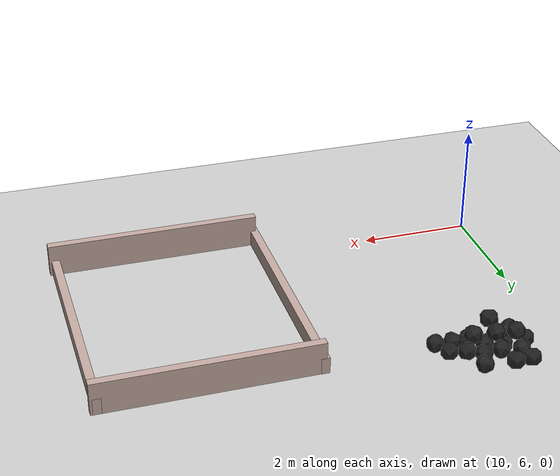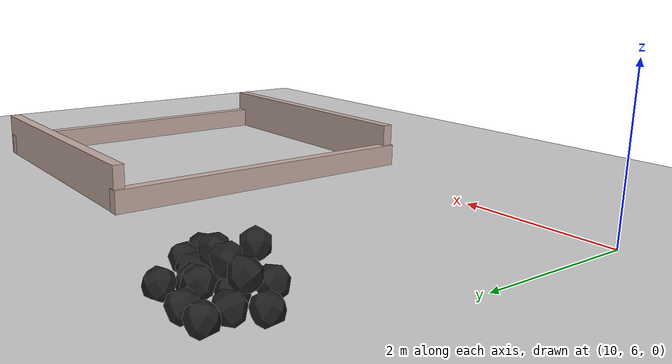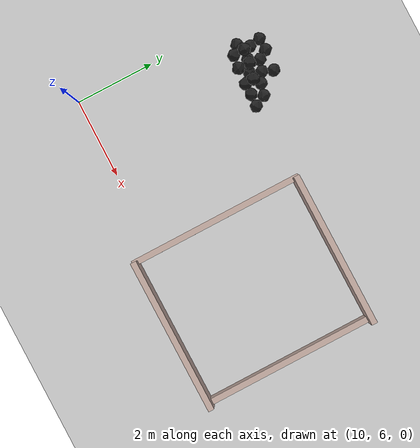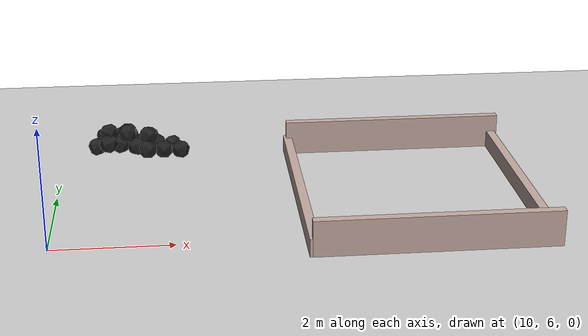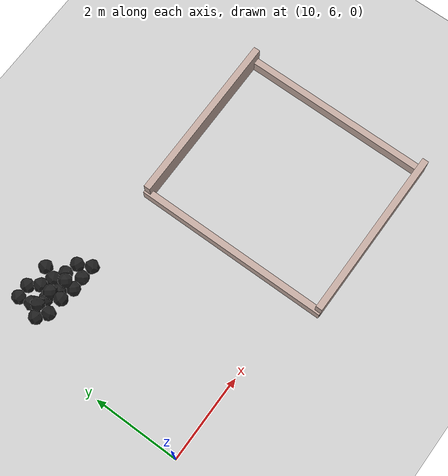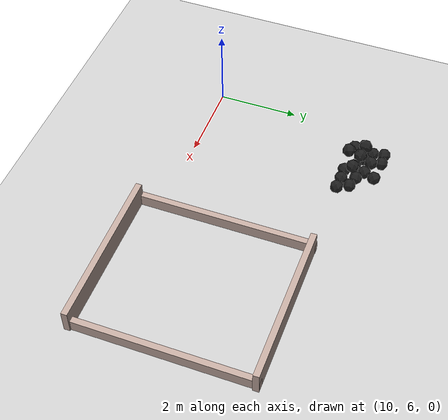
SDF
<sdf version="1.7">
 <world name="default">
  <model name="ground_plane">
   <static>1</static>
   <link name="link">
    <collision name="collision">
     <geometry><plane><normal>0 0 1</normal><size>100 100</size></plane></geometry>
     <surface><friction><ode><mu>100</mu><mu2>50</mu2></ode></friction></surface>
    </collision>
    <visual name="visual">
     <cast_shadows>0</cast_shadows>
     <geometry><plane><normal>0 0 1</normal><size>100 100</size></plane></geometry>
     <material>
      <script><uri>file://media/materials/scripts/gazebo.material</uri><name>Gazebo/Grey</name></script>
     </material>
    </visual>
   </link>
  </model>
  <model name="haoduomiantiaa_17">
   <link name="link_0">
    <inertial>
     <mass>0.2</mass>
     <inertia>
      <ixx>0.166667</ixx>
      <ixy>0</ixy>
      <ixz>0</ixz>
      <iyy>0.166667</iyy>
      <iyz>0</iyz>
      <izz>0.166667</izz>
     </inertia>
    </inertial>
    <visual name="visual">
     <geometry>
      <mesh>
       <uri>/home/lihaoyang/catkin_ws/src/pudong_gazebo/world/stl/haoduomianti.stl</uri>
       <scale>1 1 1</scale>
      </mesh>
     </geometry>
     <material>
      <lighting>1</lighting>
      <script><uri>file://media/materials/scripts/gazebo.material</uri><name>Gazebo/Black</name></script>
      <shader type="pixel"><normal_map>__default__</normal_map></shader>
      <ambient>0.3 0.3 0.3 1</ambient>
      <diffuse>0.7 0.7 0.7 1</diffuse>
      <specular>0.01 0.01 0.01 1</specular>
      <emissive>0 0 0 1</emissive>
     </material>
    </visual>
    <collision name="collision">
     <geometry>
      <mesh>
       <uri>/home/lihaoyang/catkin_ws/src/pudong_gazebo/world/stl/haoduomianti.stl</uri>
       <scale>1 1 1</scale>
      </mesh>
     </geometry>
     <surface>
      <friction>
       <ode><mu>1</mu><mu2>1</mu2><fdir1>0 0 0</fdir1><slip1>0</slip1><slip2>0</slip2></ode>
       <torsional>
        <coefficient>1</coefficient>
        <patch_radius>0</patch_radius>
        <surface_radius>0</surface_radius>
        <use_patch_radius>1</use_patch_radius>
        <ode><slip>0</slip></ode>
       </torsional>
      </friction>
      <bounce><restitution_coefficient>0</restitution_coefficient><threshold>1e+06</threshold></bounce>
      <contact>
       <collide_without_contact>0</collide_without_contact>
       <collide_without_contact_bitmask>1</collide_without_contact_bitmask>
       <collide_bitmask>1</collide_bitmask>
       <ode>
        <soft_cfm>0</soft_cfm>
        <soft_erp>0.2</soft_erp>
        <kp>1e+13</kp>
        <kd>1</kd>
        <max_vel>0.01</max_vel>
        <min_depth>0</min_depth>
       </ode>
       <bullet>
        <split_impulse>1</split_impulse>
        <split_impulse_penetration_threshold>-0.01</split_impulse_penetration_threshold>
        <soft_cfm>0</soft_cfm>
        <soft_erp>0.2</soft_erp>
        <kp>1e+13</kp>
        <kd>1</kd>
       </bullet>
      </contact>
     </surface>
    </collision>
   </link>
   <static>0</static>
   <pose>10.8183 10.1767 0.13424 0.983569 -0.827612 0.698595</pose>
  </model>
  <model name="haoduomiantiaa_18">
   <link name="link_0">
    <inertial>
     <mass>0.2</mass>
     <inertia>
      <ixx>0.166667</ixx>
      <ixy>0</ixy>
      <ixz>0</ixz>
      <iyy>0.166667</iyy>
      <iyz>0</iyz>
      <izz>0.166667</izz>
     </inertia>
    </inertial>
    <visual name="visual">
     <geometry>
      <mesh>
       <uri>/home/lihaoyang/catkin_ws/src/pudong_gazebo/world/stl/haoduomianti.stl</uri>
       <scale>1 1 1</scale>
      </mesh>
     </geometry>
     <material>
      <lighting>1</lighting>
      <script><uri>file://media/materials/scripts/gazebo.material</uri><name>Gazebo/Black</name></script>
      <shader type="pixel"><normal_map>__default__</normal_map></shader>
      <ambient>0.3 0.3 0.3 1</ambient>
      <diffuse>0.7 0.7 0.7 1</diffuse>
      <specular>0.01 0.01 0.01 1</specular>
      <emissive>0 0 0 1</emissive>
     </material>
    </visual>
    <collision name="collision">
     <geometry>
      <mesh>
       <uri>/home/lihaoyang/catkin_ws/src/pudong_gazebo/world/stl/haoduomianti.stl</uri>
       <scale>1 1 1</scale>
      </mesh>
     </geometry>
     <surface>
      <friction>
       <ode><mu>1</mu><mu2>1</mu2><fdir1>0 0 0</fdir1><slip1>0</slip1><slip2>0</slip2></ode>
       <torsional>
        <coefficient>1</coefficient>
        <patch_radius>0</patch_radius>
        <surface_radius>0</surface_radius>
        <use_patch_radius>1</use_patch_radius>
        <ode><slip>0</slip></ode>
       </torsional>
      </friction>
      <bounce><restitution_coefficient>0</restitution_coefficient><threshold>1e+06</threshold></bounce>
      <contact>
       <collide_without_contact>0</collide_without_contact>
       <collide_without_contact_bitmask>1</collide_without_contact_bitmask>
       <collide_bitmask>1</collide_bitmask>
       <ode>
        <soft_cfm>0</soft_cfm>
        <soft_erp>0.2</soft_erp>
        <kp>1e+13</kp>
        <kd>1</kd>
        <max_vel>0.01</max_vel>
        <min_depth>0</min_depth>
       </ode>
       <bullet>
        <split_impulse>1</split_impulse>
        <split_impulse_penetration_threshold>-0.01</split_impulse_penetration_threshold>
        <soft_cfm>0</soft_cfm>
        <soft_erp>0.2</soft_erp>
        <kp>1e+13</kp>
        <kd>1</kd>
       </bullet>
      </contact>
     </surface>
    </collision>
   </link>
   <static>0</static>
   <pose>11.1813 9.75908 0.221474 0.668145 -0.565996 1.57935</pose>
  </model>
  <model name="haoduomiantiaa_20">
   <link name="link_0">
    <inertial>
     <mass>0.2</mass>
     <inertia>
      <ixx>0.166667</ixx>
      <ixy>0</ixy>
      <ixz>0</ixz>
      <iyy>0.166667</iyy>
      <iyz>0</iyz>
      <izz>0.166667</izz>
     </inertia>
    </inertial>
    <visual name="visual">
     <geometry>
      <mesh>
       <uri>/home/lihaoyang/catkin_ws/src/pudong_gazebo/world/stl/haoduomianti.stl</uri>
       <scale>1 1 1</scale>
      </mesh>
     </geometry>
     <material>
      <lighting>1</lighting>
      <script><uri>file://media/materials/scripts/gazebo.material</uri><name>Gazebo/Black</name></script>
      <shader type="pixel"><normal_map>__default__</normal_map></shader>
      <ambient>0.3 0.3 0.3 1</ambient>
      <diffuse>0.7 0.7 0.7 1</diffuse>
      <specular>0.01 0.01 0.01 1</specular>
      <emissive>0 0 0 1</emissive>
     </material>
    </visual>
    <collision name="collision">
     <geometry>
      <mesh>
       <uri>/home/lihaoyang/catkin_ws/src/pudong_gazebo/world/stl/haoduomianti.stl</uri>
       <scale>1 1 1</scale>
      </mesh>
     </geometry>
     <surface>
      <friction>
       <ode><mu>1</mu><mu2>1</mu2><fdir1>0 0 0</fdir1><slip1>0</slip1><slip2>0</slip2></ode>
       <torsional>
        <coefficient>1</coefficient>
        <patch_radius>0</patch_radius>
        <surface_radius>0</surface_radius>
        <use_patch_radius>1</use_patch_radius>
        <ode><slip>0</slip></ode>
       </torsional>
      </friction>
      <bounce><restitution_coefficient>0</restitution_coefficient><threshold>1e+06</threshold></bounce>
      <contact>
       <collide_without_contact>0</collide_without_contact>
       <collide_without_contact_bitmask>1</collide_without_contact_bitmask>
       <collide_bitmask>1</collide_bitmask>
       <ode>
        <soft_cfm>0</soft_cfm>
        <soft_erp>0.2</soft_erp>
        <kp>1e+13</kp>
        <kd>1</kd>
        <max_vel>0.01</max_vel>
        <min_depth>0</min_depth>
       </ode>
       <bullet>
        <split_impulse>1</split_impulse>
        <split_impulse_penetration_threshold>-0.01</split_impulse_penetration_threshold>
        <soft_cfm>0</soft_cfm>
        <soft_erp>0.2</soft_erp>
        <kp>1e+13</kp>
        <kd>1</kd>
       </bullet>
      </contact>
     </surface>
    </collision>
   </link>
   <static>0</static>
   <pose>11.4947 9.96528 0.098501 0.636167 -0.637468 -1.3032</pose>
  </model>
  <model name="haoduomiantiaa_39">
   <link name="link_0">
    <inertial>
     <mass>0.2</mass>
     <inertia>
      <ixx>0.166667</ixx>
      <ixy>0</ixy>
      <ixz>0</ixz>
      <iyy>0.166667</iyy>
      <iyz>0</iyz>
      <izz>0.166667</izz>
     </inertia>
    </inertial>
    <visual name="visual">
     <geometry>
      <mesh>
       <uri>/home/lihaoyang/catkin_ws/src/pudong_gazebo/world/stl/haoduomianti.stl</uri>
       <scale>1 1 1</scale>
      </mesh>
     </geometry>
     <material>
      <lighting>1</lighting>
      <script><uri>file://media/materials/scripts/gazebo.material</uri><name>Gazebo/Black</name></script>
      <shader type="pixel"><normal_map>__default__</normal_map></shader>
      <ambient>0.3 0.3 0.3 1</ambient>
      <diffuse>0.7 0.7 0.7 1</diffuse>
      <specular>0.01 0.01 0.01 1</specular>
      <emissive>0 0 0 1</emissive>
     </material>
    </visual>
    <collision name="collision">
     <geometry>
      <mesh>
       <uri>/home/lihaoyang/catkin_ws/src/pudong_gazebo/world/stl/haoduomianti.stl</uri>
       <scale>1 1 1</scale>
      </mesh>
     </geometry>
     <surface>
      <friction>
       <ode><mu>1</mu><mu2>1</mu2><fdir1>0 0 0</fdir1><slip1>0</slip1><slip2>0</slip2></ode>
       <torsional>
        <coefficient>1</coefficient>
        <patch_radius>0</patch_radius>
        <surface_radius>0</surface_radius>
        <use_patch_radius>1</use_patch_radius>
        <ode><slip>0</slip></ode>
       </torsional>
      </friction>
      <bounce><restitution_coefficient>0</restitution_coefficient><threshold>1e+06</threshold></bounce>
      <contact>
       <collide_without_contact>0</collide_without_contact>
       <collide_without_contact_bitmask>1</collide_without_contact_bitmask>
       <collide_bitmask>1</collide_bitmask>
       <ode>
        <soft_cfm>0</soft_cfm>
        <soft_erp>0.2</soft_erp>
        <kp>1e+13</kp>
        <kd>1</kd>
        <max_vel>0.01</max_vel>
        <min_depth>0</min_depth>
       </ode>
       <bullet>
        <split_impulse>1</split_impulse>
        <split_impulse_penetration_threshold>-0.01</split_impulse_penetration_threshold>
        <soft_cfm>0</soft_cfm>
        <soft_erp>0.2</soft_erp>
        <kp>1e+13</kp>
        <kd>1</kd>
       </bullet>
      </contact>
     </surface>
    </collision>
   </link>
   <static>0</static>
   <pose>11.0139 10.1091 -0.114991 0.804504 -0.624299 -0.955473</pose>
  </model>
  <model name="haoduomiantiaa_40">
   <link name="link_0">
    <inertial>
     <mass>0.2</mass>
     <inertia>
      <ixx>0.166667</ixx>
      <ixy>0</ixy>
      <ixz>0</ixz>
      <iyy>0.166667</iyy>
      <iyz>0</iyz>
      <izz>0.166667</izz>
     </inertia>
    </inertial>
    <visual name="visual">
     <geometry>
      <mesh>
       <uri>/home/lihaoyang/catkin_ws/src/pudong_gazebo/world/stl/haoduomianti.stl</uri>
       <scale>1 1 1</scale>
      </mesh>
     </geometry>
     <material>
      <lighting>1</lighting>
      <script><uri>file://media/materials/scripts/gazebo.material</uri><name>Gazebo/Black</name></script>
      <shader type="pixel"><normal_map>__default__</normal_map></shader>
      <ambient>0.3 0.3 0.3 1</ambient>
      <diffuse>0.7 0.7 0.7 1</diffuse>
      <specular>0.01 0.01 0.01 1</specular>
      <emissive>0 0 0 1</emissive>
     </material>
    </visual>
    <collision name="collision">
     <geometry>
      <mesh>
       <uri>/home/lihaoyang/catkin_ws/src/pudong_gazebo/world/stl/haoduomianti.stl</uri>
       <scale>1 1 1</scale>
      </mesh>
     </geometry>
     <surface>
      <friction>
       <ode><mu>1</mu><mu2>1</mu2><fdir1>0 0 0</fdir1><slip1>0</slip1><slip2>0</slip2></ode>
       <torsional>
        <coefficient>1</coefficient>
        <patch_radius>0</patch_radius>
        <surface_radius>0</surface_radius>
        <use_patch_radius>1</use_patch_radius>
        <ode><slip>0</slip></ode>
       </torsional>
      </friction>
      <bounce><restitution_coefficient>0</restitution_coefficient><threshold>1e+06</threshold></bounce>
      <contact>
       <collide_without_contact>0</collide_without_contact>
       <collide_without_contact_bitmask>1</collide_without_contact_bitmask>
       <collide_bitmask>1</collide_bitmask>
       <ode>
        <soft_cfm>0</soft_cfm>
        <soft_erp>0.2</soft_erp>
        <kp>1e+13</kp>
        <kd>1</kd>
        <max_vel>0.01</max_vel>
        <min_depth>0</min_depth>
       </ode>
       <bullet>
        <split_impulse>1</split_impulse>
        <split_impulse_penetration_threshold>-0.01</split_impulse_penetration_threshold>
        <soft_cfm>0</soft_cfm>
        <soft_erp>0.2</soft_erp>
        <kp>1e+13</kp>
        <kd>1</kd>
       </bullet>
      </contact>
     </surface>
    </collision>
   </link>
   <static>0</static>
   <pose>10.7082 10.5848 -0.115469 0.785419 -0.615477 1.31137</pose>
  </model>
  <model name="haoduomiantiaa_43">
   <link name="link_0">
    <inertial>
     <mass>0.2</mass>
     <inertia>
      <ixx>0.166667</ixx>
      <ixy>0</ixy>
      <ixz>0</ixz>
      <iyy>0.166667</iyy>
      <iyz>0</iyz>
      <izz>0.166667</izz>
     </inertia>
    </inertial>
    <visual name="visual">
     <geometry>
      <mesh>
       <uri>/home/lihaoyang/catkin_ws/src/pudong_gazebo/world/stl/haoduomianti.stl</uri>
       <scale>1 1 1</scale>
      </mesh>
     </geometry>
     <material>
      <lighting>1</lighting>
      <script><uri>file://media/materials/scripts/gazebo.material</uri><name>Gazebo/Black</name></script>
      <shader type="pixel"><normal_map>__default__</normal_map></shader>
      <ambient>0.3 0.3 0.3 1</ambient>
      <diffuse>0.7 0.7 0.7 1</diffuse>
      <specular>0.01 0.01 0.01 1</specular>
      <emissive>0 0 0 1</emissive>
     </material>
    </visual>
    <collision name="collision">
     <geometry>
      <mesh>
       <uri>/home/lihaoyang/catkin_ws/src/pudong_gazebo/world/stl/haoduomianti.stl</uri>
       <scale>1 1 1</scale>
      </mesh>
     </geometry>
     <surface>
      <friction>
       <ode><mu>1</mu><mu2>1</mu2><fdir1>0 0 0</fdir1><slip1>0</slip1><slip2>0</slip2></ode>
       <torsional>
        <coefficient>1</coefficient>
        <patch_radius>0</patch_radius>
        <surface_radius>0</surface_radius>
        <use_patch_radius>1</use_patch_radius>
        <ode><slip>0</slip></ode>
       </torsional>
      </friction>
      <bounce><restitution_coefficient>0</restitution_coefficient><threshold>1e+06</threshold></bounce>
      <contact>
       <collide_without_contact>0</collide_without_contact>
       <collide_without_contact_bitmask>1</collide_without_contact_bitmask>
       <collide_bitmask>1</collide_bitmask>
       <ode>
        <soft_cfm>0</soft_cfm>
        <soft_erp>0.2</soft_erp>
        <kp>1e+13</kp>
        <kd>1</kd>
        <max_vel>0.01</max_vel>
        <min_depth>0</min_depth>
       </ode>
       <bullet>
        <split_impulse>1</split_impulse>
        <split_impulse_penetration_threshold>-0.01</split_impulse_penetration_threshold>
        <soft_cfm>0</soft_cfm>
        <soft_erp>0.2</soft_erp>
        <kp>1e+13</kp>
        <kd>1</kd>
       </bullet>
      </contact>
     </surface>
    </collision>
   </link>
   <static>0</static>
   <pose>10.7624 10.2986 -0.115469 0.785402 -0.615468 -1.97185</pose>
  </model>
  <model name="haoduomiantiaa_55">
   <link name="link_0">
    <inertial>
     <mass>0.2</mass>
     <inertia>
      <ixx>0.166667</ixx>
      <ixy>0</ixy>
      <ixz>0</ixz>
      <iyy>0.166667</iyy>
      <iyz>0</iyz>
      <izz>0.166667</izz>
     </inertia>
    </inertial>
    <visual name="visual">
     <geometry>
      <mesh>
       <uri>/home/lihaoyang/catkin_ws/src/pudong_gazebo/world/stl/haoduomianti.stl</uri>
       <scale>1 1 1</scale>
      </mesh>
     </geometry>
     <material>
      <lighting>1</lighting>
      <script><uri>file://media/materials/scripts/gazebo.material</uri><name>Gazebo/Black</name></script>
      <shader type="pixel"><normal_map>__default__</normal_map></shader>
      <ambient>0.3 0.3 0.3 1</ambient>
      <diffuse>0.7 0.7 0.7 1</diffuse>
      <specular>0.01 0.01 0.01 1</specular>
      <emissive>0 0 0 1</emissive>
     </material>
    </visual>
    <collision name="collision">
     <geometry>
      <mesh>
       <uri>/home/lihaoyang/catkin_ws/src/pudong_gazebo/world/stl/haoduomianti.stl</uri>
       <scale>1 1 1</scale>
      </mesh>
     </geometry>
     <surface>
      <friction>
       <ode><mu>1</mu><mu2>1</mu2><fdir1>0 0 0</fdir1><slip1>0</slip1><slip2>0</slip2></ode>
       <torsional>
        <coefficient>1</coefficient>
        <patch_radius>0</patch_radius>
        <surface_radius>0</surface_radius>
        <use_patch_radius>1</use_patch_radius>
        <ode><slip>0</slip></ode>
       </torsional>
      </friction>
      <bounce><restitution_coefficient>0</restitution_coefficient><threshold>1e+06</threshold></bounce>
      <contact>
       <collide_without_contact>0</collide_without_contact>
       <collide_without_contact_bitmask>1</collide_without_contact_bitmask>
       <collide_bitmask>1</collide_bitmask>
       <ode>
        <soft_cfm>0</soft_cfm>
        <soft_erp>0.2</soft_erp>
        <kp>1e+13</kp>
        <kd>1</kd>
        <max_vel>0.01</max_vel>
        <min_depth>0</min_depth>
       </ode>
       <bullet>
        <split_impulse>1</split_impulse>
        <split_impulse_penetration_threshold>-0.01</split_impulse_penetration_threshold>
        <soft_cfm>0</soft_cfm>
        <soft_erp>0.2</soft_erp>
        <kp>1e+13</kp>
        <kd>1</kd>
       </bullet>
      </contact>
     </surface>
    </collision>
   </link>
   <static>0</static>
   <pose>12.1098 9.76444 -0.11547 0.785397 -0.615478 2.12303</pose>
  </model>
  <model name="haoduomiantiaa_61">
   <link name="link_0">
    <inertial>
     <mass>0.2</mass>
     <inertia>
      <ixx>0.166667</ixx>
      <ixy>0</ixy>
      <ixz>0</ixz>
      <iyy>0.166667</iyy>
      <iyz>0</iyz>
      <izz>0.166667</izz>
     </inertia>
    </inertial>
    <visual name="visual">
     <geometry>
      <mesh>
       <uri>/home/lihaoyang/catkin_ws/src/pudong_gazebo/world/stl/haoduomianti.stl</uri>
       <scale>1 1 1</scale>
      </mesh>
     </geometry>
     <material>
      <lighting>1</lighting>
      <script><uri>file://media/materials/scripts/gazebo.material</uri><name>Gazebo/Black</name></script>
      <shader type="pixel"><normal_map>__default__</normal_map></shader>
      <ambient>0.3 0.3 0.3 1</ambient>
      <diffuse>0.7 0.7 0.7 1</diffuse>
      <specular>0.01 0.01 0.01 1</specular>
      <emissive>0 0 0 1</emissive>
     </material>
    </visual>
    <collision name="collision">
     <geometry>
      <mesh>
       <uri>/home/lihaoyang/catkin_ws/src/pudong_gazebo/world/stl/haoduomianti.stl</uri>
       <scale>1 1 1</scale>
      </mesh>
     </geometry>
     <surface>
      <friction>
       <ode><mu>1</mu><mu2>1</mu2><fdir1>0 0 0</fdir1><slip1>0</slip1><slip2>0</slip2></ode>
       <torsional>
        <coefficient>1</coefficient>
        <patch_radius>0</patch_radius>
        <surface_radius>0</surface_radius>
        <use_patch_radius>1</use_patch_radius>
        <ode><slip>0</slip></ode>
       </torsional>
      </friction>
      <bounce><restitution_coefficient>0</restitution_coefficient><threshold>1e+06</threshold></bounce>
      <contact>
       <collide_without_contact>0</collide_without_contact>
       <collide_without_contact_bitmask>1</collide_without_contact_bitmask>
       <collide_bitmask>1</collide_bitmask>
       <ode>
        <soft_cfm>0</soft_cfm>
        <soft_erp>0.2</soft_erp>
        <kp>1e+13</kp>
        <kd>1</kd>
        <max_vel>0.01</max_vel>
        <min_depth>0</min_depth>
       </ode>
       <bullet>
        <split_impulse>1</split_impulse>
        <split_impulse_penetration_threshold>-0.01</split_impulse_penetration_threshold>
        <soft_cfm>0</soft_cfm>
        <soft_erp>0.2</soft_erp>
        <kp>1e+13</kp>
        <kd>1</kd>
       </bullet>
      </contact>
     </surface>
    </collision>
   </link>
   <static>0</static>
   <pose>11.0056 10.5926 -0.115473 0.785405 -0.615414 1.2789</pose>
  </model>
  <model name="haoduomiantiaa_62">
   <link name="link_0">
    <inertial>
     <mass>0.2</mass>
     <inertia>
      <ixx>0.166667</ixx>
      <ixy>0</ixy>
      <ixz>0</ixz>
      <iyy>0.166667</iyy>
      <iyz>0</iyz>
      <izz>0.166667</izz>
     </inertia>
    </inertial>
    <visual name="visual">
     <geometry>
      <mesh>
       <uri>/home/lihaoyang/catkin_ws/src/pudong_gazebo/world/stl/haoduomianti.stl</uri>
       <scale>1 1 1</scale>
      </mesh>
     </geometry>
     <material>
      <lighting>1</lighting>
      <script><uri>file://media/materials/scripts/gazebo.material</uri><name>Gazebo/Black</name></script>
      <shader type="pixel"><normal_map>__default__</normal_map></shader>
      <ambient>0.3 0.3 0.3 1</ambient>
      <diffuse>0.7 0.7 0.7 1</diffuse>
      <specular>0.01 0.01 0.01 1</specular>
      <emissive>0 0 0 1</emissive>
     </material>
    </visual>
    <collision name="collision">
     <geometry>
      <mesh>
       <uri>/home/lihaoyang/catkin_ws/src/pudong_gazebo/world/stl/haoduomianti.stl</uri>
       <scale>1 1 1</scale>
      </mesh>
     </geometry>
     <surface>
      <friction>
       <ode><mu>1</mu><mu2>1</mu2><fdir1>0 0 0</fdir1><slip1>0</slip1><slip2>0</slip2></ode>
       <torsional>
        <coefficient>1</coefficient>
        <patch_radius>0</patch_radius>
        <surface_radius>0</surface_radius>
        <use_patch_radius>1</use_patch_radius>
        <ode><slip>0</slip></ode>
       </torsional>
      </friction>
      <bounce><restitution_coefficient>0</restitution_coefficient><threshold>1e+06</threshold></bounce>
      <contact>
       <collide_without_contact>0</collide_without_contact>
       <collide_without_contact_bitmask>1</collide_without_contact_bitmask>
       <collide_bitmask>1</collide_bitmask>
       <ode>
        <soft_cfm>0</soft_cfm>
        <soft_erp>0.2</soft_erp>
        <kp>1e+13</kp>
        <kd>1</kd>
        <max_vel>0.01</max_vel>
        <min_depth>0</min_depth>
       </ode>
       <bullet>
        <split_impulse>1</split_impulse>
        <split_impulse_penetration_threshold>-0.01</split_impulse_penetration_threshold>
        <soft_cfm>0</soft_cfm>
        <soft_erp>0.2</soft_erp>
        <kp>1e+13</kp>
        <kd>1</kd>
       </bullet>
      </contact>
     </surface>
    </collision>
   </link>
   <static>0</static>
   <pose>11.9681 10.0447 -0.115532 0.785678 -0.615462 1.16474</pose>
  </model>
  <model name="haoduomiantiaa_73">
   <link name="link_0">
    <inertial>
     <mass>0.2</mass>
     <inertia>
      <ixx>0.166667</ixx>
      <ixy>0</ixy>
      <ixz>0</ixz>
      <iyy>0.166667</iyy>
      <iyz>0</iyz>
      <izz>0.166667</izz>
     </inertia>
    </inertial>
    <visual name="visual">
     <geometry>
      <mesh>
       <uri>/home/lihaoyang/catkin_ws/src/pudong_gazebo/world/stl/haoduomianti.stl</uri>
       <scale>1 1 1</scale>
      </mesh>
     </geometry>
     <material>
      <lighting>1</lighting>
      <script><uri>file://media/materials/scripts/gazebo.material</uri><name>Gazebo/Black</name></script>
      <shader type="pixel"><normal_map>__default__</normal_map></shader>
      <ambient>0.3 0.3 0.3 1</ambient>
      <diffuse>0.7 0.7 0.7 1</diffuse>
      <specular>0.01 0.01 0.01 1</specular>
      <emissive>0 0 0 1</emissive>
     </material>
    </visual>
    <collision name="collision">
     <geometry>
      <mesh>
       <uri>/home/lihaoyang/catkin_ws/src/pudong_gazebo/world/stl/haoduomianti.stl</uri>
       <scale>1 1 1</scale>
      </mesh>
     </geometry>
     <surface>
      <friction>
       <ode><mu>1</mu><mu2>1</mu2><fdir1>0 0 0</fdir1><slip1>0</slip1><slip2>0</slip2></ode>
       <torsional>
        <coefficient>1</coefficient>
        <patch_radius>0</patch_radius>
        <surface_radius>0</surface_radius>
        <use_patch_radius>1</use_patch_radius>
        <ode><slip>0</slip></ode>
       </torsional>
      </friction>
      <bounce><restitution_coefficient>0</restitution_coefficient><threshold>1e+06</threshold></bounce>
      <contact>
       <collide_without_contact>0</collide_without_contact>
       <collide_without_contact_bitmask>1</collide_without_contact_bitmask>
       <collide_bitmask>1</collide_bitmask>
       <ode>
        <soft_cfm>0</soft_cfm>
        <soft_erp>0.2</soft_erp>
        <kp>1e+13</kp>
        <kd>1</kd>
        <max_vel>0.01</max_vel>
        <min_depth>0</min_depth>
       </ode>
       <bullet>
        <split_impulse>1</split_impulse>
        <split_impulse_penetration_threshold>-0.01</split_impulse_penetration_threshold>
        <soft_cfm>0</soft_cfm>
        <soft_erp>0.2</soft_erp>
        <kp>1e+13</kp>
        <kd>1</kd>
       </bullet>
      </contact>
     </surface>
    </collision>
   </link>
   <static>0</static>
   <pose>10.5824 10.037 -0.11563 0.785388 -0.615427 -2.96221</pose>
  </model>
  <model name="haoduomiantiaa_74">
   <link name="link_0">
    <inertial>
     <mass>0.2</mass>
     <inertia>
      <ixx>0.166667</ixx>
      <ixy>0</ixy>
      <ixz>0</ixz>
      <iyy>0.166667</iyy>
      <iyz>0</iyz>
      <izz>0.166667</izz>
     </inertia>
    </inertial>
    <visual name="visual">
     <geometry>
      <mesh>
       <uri>/home/lihaoyang/catkin_ws/src/pudong_gazebo/world/stl/haoduomianti.stl</uri>
       <scale>1 1 1</scale>
      </mesh>
     </geometry>
     <material>
      <lighting>1</lighting>
      <script><uri>file://media/materials/scripts/gazebo.material</uri><name>Gazebo/Black</name></script>
      <shader type="pixel"><normal_map>__default__</normal_map></shader>
      <ambient>0.3 0.3 0.3 1</ambient>
      <diffuse>0.7 0.7 0.7 1</diffuse>
      <specular>0.01 0.01 0.01 1</specular>
      <emissive>0 0 0 1</emissive>
     </material>
    </visual>
    <collision name="collision">
     <geometry>
      <mesh>
       <uri>/home/lihaoyang/catkin_ws/src/pudong_gazebo/world/stl/haoduomianti.stl</uri>
       <scale>1 1 1</scale>
      </mesh>
     </geometry>
     <surface>
      <friction>
       <ode><mu>1</mu><mu2>1</mu2><fdir1>0 0 0</fdir1><slip1>0</slip1><slip2>0</slip2></ode>
       <torsional>
        <coefficient>1</coefficient>
        <patch_radius>0</patch_radius>
        <surface_radius>0</surface_radius>
        <use_patch_radius>1</use_patch_radius>
        <ode><slip>0</slip></ode>
       </torsional>
      </friction>
      <bounce><restitution_coefficient>0</restitution_coefficient><threshold>1e+06</threshold></bounce>
      <contact>
       <collide_without_contact>0</collide_without_contact>
       <collide_without_contact_bitmask>1</collide_without_contact_bitmask>
       <collide_bitmask>1</collide_bitmask>
       <ode>
        <soft_cfm>0</soft_cfm>
        <soft_erp>0.2</soft_erp>
        <kp>1e+13</kp>
        <kd>1</kd>
        <max_vel>0.01</max_vel>
        <min_depth>0</min_depth>
       </ode>
       <bullet>
        <split_impulse>1</split_impulse>
        <split_impulse_penetration_threshold>-0.01</split_impulse_penetration_threshold>
        <soft_cfm>0</soft_cfm>
        <soft_erp>0.2</soft_erp>
        <kp>1e+13</kp>
        <kd>1</kd>
       </bullet>
      </contact>
     </surface>
    </collision>
   </link>
   <static>0</static>
   <pose>11.1604 10.3546 -0.018811 0.810514 -0.629026 2.0311</pose>
  </model>
  <model name="haoduomiantiaa_76">
   <link name="link_0">
    <inertial>
     <mass>0.2</mass>
     <inertia>
      <ixx>0.166667</ixx>
      <ixy>0</ixy>
      <ixz>0</ixz>
      <iyy>0.166667</iyy>
      <iyz>0</iyz>
      <izz>0.166667</izz>
     </inertia>
    </inertial>
    <visual name="visual">
     <geometry>
      <mesh>
       <uri>/home/lihaoyang/catkin_ws/src/pudong_gazebo/world/stl/haoduomianti.stl</uri>
       <scale>1 1 1</scale>
      </mesh>
     </geometry>
     <material>
      <lighting>1</lighting>
      <script><uri>file://media/materials/scripts/gazebo.material</uri><name>Gazebo/Black</name></script>
      <shader type="pixel"><normal_map>__default__</normal_map></shader>
      <ambient>0.3 0.3 0.3 1</ambient>
      <diffuse>0.7 0.7 0.7 1</diffuse>
      <specular>0.01 0.01 0.01 1</specular>
      <emissive>0 0 0 1</emissive>
     </material>
    </visual>
    <collision name="collision">
     <geometry>
      <mesh>
       <uri>/home/lihaoyang/catkin_ws/src/pudong_gazebo/world/stl/haoduomianti.stl</uri>
       <scale>1 1 1</scale>
      </mesh>
     </geometry>
     <surface>
      <friction>
       <ode><mu>1</mu><mu2>1</mu2><fdir1>0 0 0</fdir1><slip1>0</slip1><slip2>0</slip2></ode>
       <torsional>
        <coefficient>1</coefficient>
        <patch_radius>0</patch_radius>
        <surface_radius>0</surface_radius>
        <use_patch_radius>1</use_patch_radius>
        <ode><slip>0</slip></ode>
       </torsional>
      </friction>
      <bounce><restitution_coefficient>0</restitution_coefficient><threshold>1e+06</threshold></bounce>
      <contact>
       <collide_without_contact>0</collide_without_contact>
       <collide_without_contact_bitmask>1</collide_without_contact_bitmask>
       <collide_bitmask>1</collide_bitmask>
       <ode>
        <soft_cfm>0</soft_cfm>
        <soft_erp>0.2</soft_erp>
        <kp>1e+13</kp>
        <kd>1</kd>
        <max_vel>0.01</max_vel>
        <min_depth>0</min_depth>
       </ode>
       <bullet>
        <split_impulse>1</split_impulse>
        <split_impulse_penetration_threshold>-0.01</split_impulse_penetration_threshold>
        <soft_cfm>0</soft_cfm>
        <soft_erp>0.2</soft_erp>
        <kp>1e+13</kp>
        <kd>1</kd>
       </bullet>
      </contact>
     </surface>
    </collision>
   </link>
   <static>0</static>
   <pose>11.6766 10.1194 -0.115032 0.771081 -0.622144 -1.13155</pose>
  </model>
  <model name="haoduomiantiaa_89">
   <link name="link_0">
    <inertial>
     <mass>0.2</mass>
     <inertia>
      <ixx>0.166667</ixx>
      <ixy>0</ixy>
      <ixz>0</ixz>
      <iyy>0.166667</iyy>
      <iyz>0</iyz>
      <izz>0.166667</izz>
     </inertia>
    </inertial>
    <visual name="visual">
     <geometry>
      <mesh>
       <uri>/home/lihaoyang/catkin_ws/src/pudong_gazebo/world/stl/haoduomianti.stl</uri>
       <scale>1 1 1</scale>
      </mesh>
     </geometry>
     <material>
      <lighting>1</lighting>
      <script><uri>file://media/materials/scripts/gazebo.material</uri><name>Gazebo/Black</name></script>
      <shader type="pixel"><normal_map>__default__</normal_map></shader>
      <ambient>0.3 0.3 0.3 1</ambient>
      <diffuse>0.7 0.7 0.7 1</diffuse>
      <specular>0.01 0.01 0.01 1</specular>
      <emissive>0 0 0 1</emissive>
     </material>
    </visual>
    <collision name="collision">
     <geometry>
      <mesh>
       <uri>/home/lihaoyang/catkin_ws/src/pudong_gazebo/world/stl/haoduomianti.stl</uri>
       <scale>1 1 1</scale>
      </mesh>
     </geometry>
     <surface>
      <friction>
       <ode><mu>1</mu><mu2>1</mu2><fdir1>0 0 0</fdir1><slip1>0</slip1><slip2>0</slip2></ode>
       <torsional>
        <coefficient>1</coefficient>
        <patch_radius>0</patch_radius>
        <surface_radius>0</surface_radius>
        <use_patch_radius>1</use_patch_radius>
        <ode><slip>0</slip></ode>
       </torsional>
      </friction>
      <bounce><restitution_coefficient>0</restitution_coefficient><threshold>1e+06</threshold></bounce>
      <contact>
       <collide_without_contact>0</collide_without_contact>
       <collide_without_contact_bitmask>1</collide_without_contact_bitmask>
       <collide_bitmask>1</collide_bitmask>
       <ode>
        <soft_cfm>0</soft_cfm>
        <soft_erp>0.2</soft_erp>
        <kp>1e+13</kp>
        <kd>1</kd>
        <max_vel>0.01</max_vel>
        <min_depth>0</min_depth>
       </ode>
       <bullet>
        <split_impulse>1</split_impulse>
        <split_impulse_penetration_threshold>-0.01</split_impulse_penetration_threshold>
        <soft_cfm>0</soft_cfm>
        <soft_erp>0.2</soft_erp>
        <kp>1e+13</kp>
        <kd>1</kd>
       </bullet>
      </contact>
     </surface>
    </collision>
   </link>
   <static>0</static>
   <pose>11.4338 10.266 -0.115467 0.785393 -0.615622 -0.092563</pose>
  </model>
  <model name="haoduomiantiaa_94">
   <link name="link_0">
    <inertial>
     <mass>0.2</mass>
     <inertia>
      <ixx>0.166667</ixx>
      <ixy>0</ixy>
      <ixz>0</ixz>
      <iyy>0.166667</iyy>
      <iyz>0</iyz>
      <izz>0.166667</izz>
     </inertia>
    </inertial>
    <visual name="visual">
     <geometry>
      <mesh>
       <uri>/home/lihaoyang/catkin_ws/src/pudong_gazebo/world/stl/haoduomianti.stl</uri>
       <scale>1 1 1</scale>
      </mesh>
     </geometry>
     <material>
      <lighting>1</lighting>
      <script><uri>file://media/materials/scripts/gazebo.material</uri><name>Gazebo/Black</name></script>
      <shader type="pixel"><normal_map>__default__</normal_map></shader>
      <ambient>0.3 0.3 0.3 1</ambient>
      <diffuse>0.7 0.7 0.7 1</diffuse>
      <specular>0.01 0.01 0.01 1</specular>
      <emissive>0 0 0 1</emissive>
     </material>
    </visual>
    <collision name="collision">
     <geometry>
      <mesh>
       <uri>/home/lihaoyang/catkin_ws/src/pudong_gazebo/world/stl/haoduomianti.stl</uri>
       <scale>1 1 1</scale>
      </mesh>
     </geometry>
     <surface>
      <friction>
       <ode><mu>1</mu><mu2>1</mu2><fdir1>0 0 0</fdir1><slip1>0</slip1><slip2>0</slip2></ode>
       <torsional>
        <coefficient>1</coefficient>
        <patch_radius>0</patch_radius>
        <surface_radius>0</surface_radius>
        <use_patch_radius>1</use_patch_radius>
        <ode><slip>0</slip></ode>
       </torsional>
      </friction>
      <bounce><restitution_coefficient>0</restitution_coefficient><threshold>1e+06</threshold></bounce>
      <contact>
       <collide_without_contact>0</collide_without_contact>
       <collide_without_contact_bitmask>1</collide_without_contact_bitmask>
       <collide_bitmask>1</collide_bitmask>
       <ode>
        <soft_cfm>0</soft_cfm>
        <soft_erp>0.2</soft_erp>
        <kp>1e+13</kp>
        <kd>1</kd>
        <max_vel>0.01</max_vel>
        <min_depth>0</min_depth>
       </ode>
       <bullet>
        <split_impulse>1</split_impulse>
        <split_impulse_penetration_threshold>-0.01</split_impulse_penetration_threshold>
        <soft_cfm>0</soft_cfm>
        <soft_erp>0.2</soft_erp>
        <kp>1e+13</kp>
        <kd>1</kd>
       </bullet>
      </contact>
     </surface>
    </collision>
   </link>
   <static>0</static>
   <pose>11.1403 10.0319 0.14182 0.679419 -0.481913 0.687873</pose>
  </model>
  <model name="haoduomiantiaa_96">
   <link name="link_0">
    <inertial>
     <mass>0.2</mass>
     <inertia>
      <ixx>0.166667</ixx>
      <ixy>0</ixy>
      <ixz>0</ixz>
      <iyy>0.166667</iyy>
      <iyz>0</iyz>
      <izz>0.166667</izz>
     </inertia>
    </inertial>
    <visual name="visual">
     <geometry>
      <mesh>
       <uri>/home/lihaoyang/catkin_ws/src/pudong_gazebo/world/stl/haoduomianti.stl</uri>
       <scale>1 1 1</scale>
      </mesh>
     </geometry>
     <material>
      <lighting>1</lighting>
      <script><uri>file://media/materials/scripts/gazebo.material</uri><name>Gazebo/Black</name></script>
      <shader type="pixel"><normal_map>__default__</normal_map></shader>
      <ambient>0.3 0.3 0.3 1</ambient>
      <diffuse>0.7 0.7 0.7 1</diffuse>
      <specular>0.01 0.01 0.01 1</specular>
      <emissive>0 0 0 1</emissive>
     </material>
    </visual>
    <collision name="collision">
     <geometry>
      <mesh>
       <uri>/home/lihaoyang/catkin_ws/src/pudong_gazebo/world/stl/haoduomianti.stl</uri>
       <scale>1 1 1</scale>
      </mesh>
     </geometry>
     <surface>
      <friction>
       <ode><mu>1</mu><mu2>1</mu2><fdir1>0 0 0</fdir1><slip1>0</slip1><slip2>0</slip2></ode>
       <torsional>
        <coefficient>1</coefficient>
        <patch_radius>0</patch_radius>
        <surface_radius>0</surface_radius>
        <use_patch_radius>1</use_patch_radius>
        <ode><slip>0</slip></ode>
       </torsional>
      </friction>
      <bounce><restitution_coefficient>0</restitution_coefficient><threshold>1e+06</threshold></bounce>
      <contact>
       <collide_without_contact>0</collide_without_contact>
       <collide_without_contact_bitmask>1</collide_without_contact_bitmask>
       <collide_bitmask>1</collide_bitmask>
       <ode>
        <soft_cfm>0</soft_cfm>
        <soft_erp>0.2</soft_erp>
        <kp>1e+13</kp>
        <kd>1</kd>
        <max_vel>0.01</max_vel>
        <min_depth>0</min_depth>
       </ode>
       <bullet>
        <split_impulse>1</split_impulse>
        <split_impulse_penetration_threshold>-0.01</split_impulse_penetration_threshold>
        <soft_cfm>0</soft_cfm>
        <soft_erp>0.2</soft_erp>
        <kp>1e+13</kp>
        <kd>1</kd>
       </bullet>
      </contact>
     </surface>
    </collision>
   </link>
   <static>0</static>
   <pose>11.304 9.99047 -0.116352 0.785451 -0.615406 -0.049728</pose>
  </model>
  <model name="haoduomiantiaa_111">
   <link name="link_0">
    <inertial>
     <mass>0.2</mass>
     <inertia>
      <ixx>0.166667</ixx>
      <ixy>0</ixy>
      <ixz>0</ixz>
      <iyy>0.166667</iyy>
      <iyz>0</iyz>
      <izz>0.166667</izz>
     </inertia>
    </inertial>
    <visual name="visual">
     <geometry>
      <mesh>
       <uri>/home/lihaoyang/catkin_ws/src/pudong_gazebo/world/stl/haoduomianti.stl</uri>
       <scale>1 1 1</scale>
      </mesh>
     </geometry>
     <material>
      <lighting>1</lighting>
      <script><uri>file://media/materials/scripts/gazebo.material</uri><name>Gazebo/Black</name></script>
      <shader type="pixel"><normal_map>__default__</normal_map></shader>
      <ambient>0.3 0.3 0.3 1</ambient>
      <diffuse>0.7 0.7 0.7 1</diffuse>
      <specular>0.01 0.01 0.01 1</specular>
      <emissive>0 0 0 1</emissive>
     </material>
    </visual>
    <collision name="collision">
     <geometry>
      <mesh>
       <uri>/home/lihaoyang/catkin_ws/src/pudong_gazebo/world/stl/haoduomianti.stl</uri>
       <scale>1 1 1</scale>
      </mesh>
     </geometry>
     <surface>
      <friction>
       <ode><mu>1</mu><mu2>1</mu2><fdir1>0 0 0</fdir1><slip1>0</slip1><slip2>0</slip2></ode>
       <torsional>
        <coefficient>1</coefficient>
        <patch_radius>0</patch_radius>
        <surface_radius>0</surface_radius>
        <use_patch_radius>1</use_patch_radius>
        <ode><slip>0</slip></ode>
       </torsional>
      </friction>
      <bounce><restitution_coefficient>0</restitution_coefficient><threshold>1e+06</threshold></bounce>
      <contact>
       <collide_without_contact>0</collide_without_contact>
       <collide_without_contact_bitmask>1</collide_without_contact_bitmask>
       <collide_bitmask>1</collide_bitmask>
       <ode>
        <soft_cfm>0</soft_cfm>
        <soft_erp>0.2</soft_erp>
        <kp>1e+13</kp>
        <kd>1</kd>
        <max_vel>0.01</max_vel>
        <min_depth>0</min_depth>
       </ode>
       <bullet>
        <split_impulse>1</split_impulse>
        <split_impulse_penetration_threshold>-0.01</split_impulse_penetration_threshold>
        <soft_cfm>0</soft_cfm>
        <soft_erp>0.2</soft_erp>
        <kp>1e+13</kp>
        <kd>1</kd>
       </bullet>
      </contact>
     </surface>
    </collision>
   </link>
   <static>0</static>
   <pose>11.8037 9.78704 -0.115563 0.786656 -0.616079 2.65845</pose>
  </model>
  <model name="haoduomiantiaa_118">
   <link name="link_0">
    <inertial>
     <mass>0.2</mass>
     <inertia>
      <ixx>0.166667</ixx>
      <ixy>0</ixy>
      <ixz>0</ixz>
      <iyy>0.166667</iyy>
      <iyz>0</iyz>
      <izz>0.166667</izz>
     </inertia>
    </inertial>
    <visual name="visual">
     <geometry>
      <mesh>
       <uri>/home/lihaoyang/catkin_ws/src/pudong_gazebo/world/stl/haoduomianti.stl</uri>
       <scale>1 1 1</scale>
      </mesh>
     </geometry>
     <material>
      <lighting>1</lighting>
      <script><uri>file://media/materials/scripts/gazebo.material</uri><name>Gazebo/Black</name></script>
      <shader type="pixel"><normal_map>__default__</normal_map></shader>
      <ambient>0.3 0.3 0.3 1</ambient>
      <diffuse>0.7 0.7 0.7 1</diffuse>
      <specular>0.01 0.01 0.01 1</specular>
      <emissive>0 0 0 1</emissive>
     </material>
    </visual>
    <collision name="collision">
     <geometry>
      <mesh>
       <uri>/home/lihaoyang/catkin_ws/src/pudong_gazebo/world/stl/haoduomianti.stl</uri>
       <scale>1 1 1</scale>
      </mesh>
     </geometry>
     <surface>
      <friction>
       <ode><mu>1</mu><mu2>1</mu2><fdir1>0 0 0</fdir1><slip1>0</slip1><slip2>0</slip2></ode>
       <torsional>
        <coefficient>1</coefficient>
        <patch_radius>0</patch_radius>
        <surface_radius>0</surface_radius>
        <use_patch_radius>1</use_patch_radius>
        <ode><slip>0</slip></ode>
       </torsional>
      </friction>
      <bounce><restitution_coefficient>0</restitution_coefficient><threshold>1e+06</threshold></bounce>
      <contact>
       <collide_without_contact>0</collide_without_contact>
       <collide_without_contact_bitmask>1</collide_without_contact_bitmask>
       <collide_bitmask>1</collide_bitmask>
       <ode>
        <soft_cfm>0</soft_cfm>
        <soft_erp>0.2</soft_erp>
        <kp>1e+13</kp>
        <kd>1</kd>
        <max_vel>0.01</max_vel>
        <min_depth>0</min_depth>
       </ode>
       <bullet>
        <split_impulse>1</split_impulse>
        <split_impulse_penetration_threshold>-0.01</split_impulse_penetration_threshold>
        <soft_cfm>0</soft_cfm>
        <soft_erp>0.2</soft_erp>
        <kp>1e+13</kp>
        <kd>1</kd>
       </bullet>
      </contact>
     </surface>
    </collision>
   </link>
   <static>0</static>
   <pose>10.7735 9.85365 -0.001955 0.830198 -0.706362 2.21188</pose>
  </model>
  <model name="haoduomiantiaa_129">
   <link name="link_0">
    <inertial>
     <mass>0.2</mass>
     <inertia>
      <ixx>0.166667</ixx>
      <ixy>0</ixy>
      <ixz>0</ixz>
      <iyy>0.166667</iyy>
      <iyz>0</iyz>
      <izz>0.166667</izz>
     </inertia>
    </inertial>
    <visual name="visual">
     <geometry>
      <mesh>
       <uri>/home/lihaoyang/catkin_ws/src/pudong_gazebo/world/stl/haoduomianti.stl</uri>
       <scale>1 1 1</scale>
      </mesh>
     </geometry>
     <material>
      <lighting>1</lighting>
      <script><uri>file://media/materials/scripts/gazebo.material</uri><name>Gazebo/Black</name></script>
      <shader type="pixel"><normal_map>__default__</normal_map></shader>
      <ambient>0.3 0.3 0.3 1</ambient>
      <diffuse>0.7 0.7 0.7 1</diffuse>
      <specular>0.01 0.01 0.01 1</specular>
      <emissive>0 0 0 1</emissive>
     </material>
    </visual>
    <collision name="collision">
     <geometry>
      <mesh>
       <uri>/home/lihaoyang/catkin_ws/src/pudong_gazebo/world/stl/haoduomianti.stl</uri>
       <scale>1 1 1</scale>
      </mesh>
     </geometry>
     <surface>
      <friction>
       <ode><mu>1</mu><mu2>1</mu2><fdir1>0 0 0</fdir1><slip1>0</slip1><slip2>0</slip2></ode>
       <torsional>
        <coefficient>1</coefficient>
        <patch_radius>0</patch_radius>
        <surface_radius>0</surface_radius>
        <use_patch_radius>1</use_patch_radius>
        <ode><slip>0</slip></ode>
       </torsional>
      </friction>
      <bounce><restitution_coefficient>0</restitution_coefficient><threshold>1e+06</threshold></bounce>
      <contact>
       <collide_without_contact>0</collide_without_contact>
       <collide_without_contact_bitmask>1</collide_without_contact_bitmask>
       <collide_bitmask>1</collide_bitmask>
       <ode>
        <soft_cfm>0</soft_cfm>
        <soft_erp>0.2</soft_erp>
        <kp>1e+13</kp>
        <kd>1</kd>
        <max_vel>0.01</max_vel>
        <min_depth>0</min_depth>
       </ode>
       <bullet>
        <split_impulse>1</split_impulse>
        <split_impulse_penetration_threshold>-0.01</split_impulse_penetration_threshold>
        <soft_cfm>0</soft_cfm>
        <soft_erp>0.2</soft_erp>
        <kp>1e+13</kp>
        <kd>1</kd>
       </bullet>
      </contact>
     </surface>
    </collision>
   </link>
   <static>0</static>
   <pose>11.538 10.5409 -0.11547 0.785399 -0.615483 -0.160265</pose>
  </model>
  <model name="haoduomiantiaa_130">
   <link name="link_0">
    <inertial>
     <mass>0.2</mass>
     <inertia>
      <ixx>0.166667</ixx>
      <ixy>0</ixy>
      <ixz>0</ixz>
      <iyy>0.166667</iyy>
      <iyz>0</iyz>
      <izz>0.166667</izz>
     </inertia>
    </inertial>
    <visual name="visual">
     <geometry>
      <mesh>
       <uri>/home/lihaoyang/catkin_ws/src/pudong_gazebo/world/stl/haoduomianti.stl</uri>
       <scale>1 1 1</scale>
      </mesh>
     </geometry>
     <material>
      <lighting>1</lighting>
      <script><uri>file://media/materials/scripts/gazebo.material</uri><name>Gazebo/Black</name></script>
      <shader type="pixel"><normal_map>__default__</normal_map></shader>
      <ambient>0.3 0.3 0.3 1</ambient>
      <diffuse>0.7 0.7 0.7 1</diffuse>
      <specular>0.01 0.01 0.01 1</specular>
      <emissive>0 0 0 1</emissive>
     </material>
    </visual>
    <collision name="collision">
     <geometry>
      <mesh>
       <uri>/home/lihaoyang/catkin_ws/src/pudong_gazebo/world/stl/haoduomianti.stl</uri>
       <scale>1 1 1</scale>
      </mesh>
     </geometry>
     <surface>
      <friction>
       <ode><mu>1</mu><mu2>1</mu2><fdir1>0 0 0</fdir1><slip1>0</slip1><slip2>0</slip2></ode>
       <torsional>
        <coefficient>1</coefficient>
        <patch_radius>0</patch_radius>
        <surface_radius>0</surface_radius>
        <use_patch_radius>1</use_patch_radius>
        <ode><slip>0</slip></ode>
       </torsional>
      </friction>
      <bounce><restitution_coefficient>0</restitution_coefficient><threshold>1e+06</threshold></bounce>
      <contact>
       <collide_without_contact>0</collide_without_contact>
       <collide_without_contact_bitmask>1</collide_without_contact_bitmask>
       <collide_bitmask>1</collide_bitmask>
       <ode>
        <soft_cfm>0</soft_cfm>
        <soft_erp>0.2</soft_erp>
        <kp>1e+13</kp>
        <kd>1</kd>
        <max_vel>0.01</max_vel>
        <min_depth>0</min_depth>
       </ode>
       <bullet>
        <split_impulse>1</split_impulse>
        <split_impulse_penetration_threshold>-0.01</split_impulse_penetration_threshold>
        <soft_cfm>0</soft_cfm>
        <soft_erp>0.2</soft_erp>
        <kp>1e+13</kp>
        <kd>1</kd>
       </bullet>
      </contact>
     </surface>
    </collision>
   </link>
   <static>0</static>
   <pose>11.4779 9.74571 -0.10585 0.785399 -0.426992 0.757803</pose>
  </model>
  <model name="Lence_0">
   <pose>12.2631 11.7015 0 0 0 -1.56827</pose>
   <link name="Wall_12">
    <collision name="Wall_12_Collision">
     <geometry><box><size>3.94165 0.15 0.6</size></box></geometry>
     <pose>0 0 0.3 0 -0 0</pose>
    </collision>
    <visual name="Wall_12_Visual">
     <pose>0 0 0.3 0 -0 0</pose>
     <geometry><box><size>3.94165 0.15 0.6</size></box></geometry>
     <material>
      <script><uri>file://media/materials/scripts/gazebo.material</uri><name>Gazebo/Grey</name></script>
      <ambient>0.760784 0.662745 0.627451 1</ambient>
     </material>
     <meta><layer>0</layer></meta>
    </visual>
    <pose>1.9225 3.755 0 0 -0 -1.5708</pose>
   </link>
   <link name="Wall_17">
    <collision name="Wall_17_Collision">
     <geometry><box><size>4.5 0.15 0.3</size></box></geometry>
     <pose>0 0 0.15 0 -0 0</pose>
    </collision>
    <visual name="Wall_17_Visual">
     <pose>0 0 0.15 0 -0 0</pose>
     <geometry><box><size>4.5 0.15 0.3</size></box></geometry>
     <material>
      <script><uri>file://media/materials/scripts/gazebo.material</uri><name>Gazebo/Grey</name></script>
      <ambient>0.760784 0.662745 0.627451 1</ambient>
     </material>
     <meta><layer>0</layer></meta>
    </visual>
    <pose>4.0975 5.61014 0 0 -0 0</pose>
   </link>
   <link name="Wall_18">
    <collision name="Wall_18_Collision">
     <geometry><box><size>3.94165 0.15 0.6</size></box></geometry>
     <pose>0 0 0.3 0 -0 0</pose>
    </collision>
    <visual name="Wall_18_Visual">
     <pose>0 0 0.3 0 -0 0</pose>
     <geometry><box><size>3.94165 0.15 0.6</size></box></geometry>
     <material>
      <script><uri>file://media/materials/scripts/gazebo.material</uri><name>Gazebo/Grey</name></script>
      <ambient>0.760784 0.662745 0.627451 1</ambient>
     </material>
     <meta><layer>0</layer></meta>
    </visual>
    <pose>6.2725 3.755 0 0 -0 -1.5708</pose>
   </link>
   <link name="Wall_8">
    <collision name="Wall_8_Collision">
     <geometry><box><size>4.5 0.15 0.3</size></box></geometry>
     <pose>0 0 0.15 0 -0 0</pose>
    </collision>
    <visual name="Wall_8_Visual">
     <pose>0 0 0.15 0 -0 0</pose>
     <geometry><box><size>4.5 0.15 0.3</size></box></geometry>
     <material>
      <script><uri>file://media/materials/scripts/gazebo.material</uri><name>Gazebo/Grey</name></script>
      <ambient>0.760784 0.662745 0.627451 1</ambient>
     </material>
     <meta><layer>0</layer></meta>
    </visual>
    <pose>4.0905 1.81317 0 0 -0 3.14159</pose>
   </link>
   <static>1</static>
  </model>
 </world>
</sdf>
